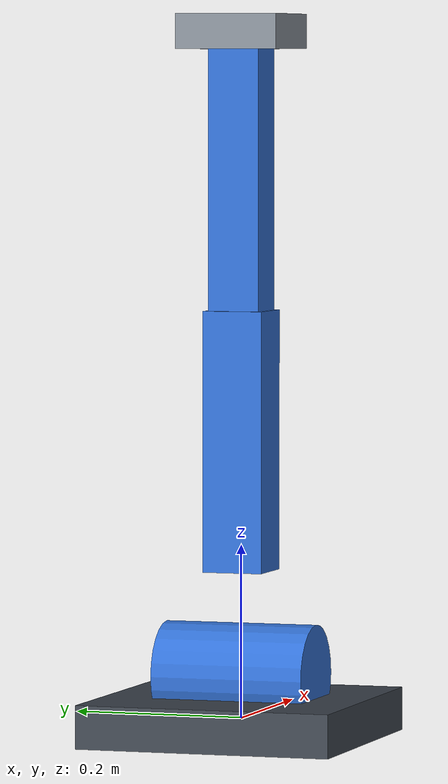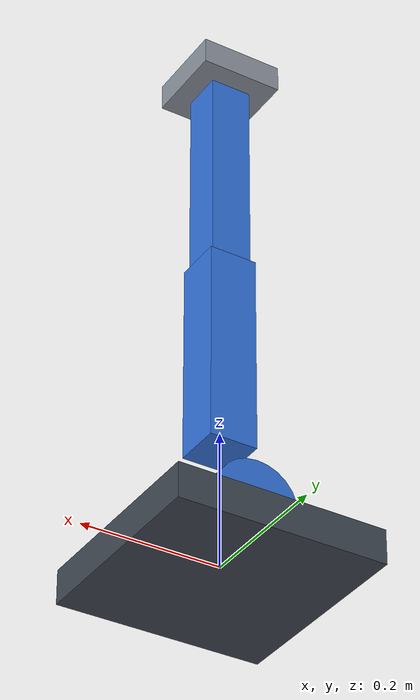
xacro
<?xml version="1.0"?>
<robot name="biped_leg" xmlns:xacro="http://www.ros.org/wiki/xacro">

  <!-- Materiales -->
  <material name="base_metal">
    <color rgba="0.25 0.28 0.32 1.0"/>
  </material>
  <material name="link_blue">
    <color rgba="0.20 0.45 0.85 1.0"/>
  </material>
  <material name="joint_orange">
    <color rgba="0.95 0.55 0.15 1.0"/>
  </material>
  <material name="foot_grey">
    <color rgba="0.55 0.58 0.62 1.0"/>
  </material>

  <!-- Eslabon raiz: base del robot, en el origen. Sin inercia (evita WARN de KDL). -->
  <link name="base_link">
    <visual>
      <geometry>
        <box size="0.30 0.30 0.05"/>
      </geometry>
      <material name="base_metal"/>
    </visual>
    <collision>
      <geometry>
        <box size="0.30 0.30 0.05"/>
      </geometry>
    </collision>
  </link>

  <!-- CADERA 1: junta en Y (gira la pata) -->
  <joint name="hip_1" type="revolute">
    <parent link="base_link"/>
    <child link="hip1"/>
    <origin xyz="0 0 0.05" rpy="0 0 0"/>
    <axis xyz="0 0 1"/>
    <limit lower="-1.5" upper="1.5" effort="10" velocity="2.0"/>
  </joint>
  <link name="hip1">
    <visual>
      <geometry>
        <cylinder radius="0.06" length="0.18"/>
      </geometry>
      <origin rpy="1.5707 0 0"/>
      <material name="link_blue"/>
    </visual>
    <collision>
      <geometry>
        <cylinder radius="0.06" length="0.18"/>
      </geometry>
    </collision>
    <inertial>
      <mass value="0.5"/>
      <inertia ixx="0.01" ixy="0" ixz="0" iyy="0.01" iyz="0" izz="0.01"/>
    </inertial>
  </link>

  <!-- MUSLO: junta en X (rodilla superior) -->
  <joint name="hip_2" type="revolute">
    <parent link="hip1"/>
    <child link="thigh"/>
    <origin xyz="0 0 0.12" rpy="0 0 0"/>
    <axis xyz="1 0 0"/>
    <limit lower="-1.5" upper="1.5" effort="10" velocity="2.0"/>
  </joint>
  <link name="thigh">
    <visual>
      <geometry>
        <box size="0.07 0.07 0.30"/>
      </geometry>
      <origin xyz="0 0 0.15"/>
      <material name="link_blue"/>
    </visual>
    <collision>
      <geometry>
        <box size="0.07 0.07 0.30"/>
      </geometry>
    </collision>
    <inertial>
      <mass value="0.4"/>
      <inertia ixx="0.01" ixy="0" ixz="0" iyy="0.01" iyz="0" izz="0.01"/>
    </inertial>
  </link>

  <!-- CANILLA: junta en X (rodilla) -->
  <joint name="knee" type="revolute">
    <parent link="thigh"/>
    <child link="shank"/>
    <origin xyz="0 0 0.30" rpy="0 0 0"/>
    <axis xyz="1 0 0"/>
    <limit lower="-2.0" upper="0.0" effort="10" velocity="2.0"/>
  </joint>
  <link name="shank">
    <visual>
      <geometry>
        <box size="0.06 0.06 0.30"/>
      </geometry>
      <origin xyz="0 0 0.15"/>
      <material name="link_blue"/>
    </visual>
    <collision>
      <geometry>
        <box size="0.06 0.06 0.30"/>
      </geometry>
    </collision>
    <inertial>
      <mass value="0.3"/>
      <inertia ixx="0.01" ixy="0" ixz="0" iyy="0.01" iyz="0" izz="0.01"/>
    </inertial>
  </link>

  <!-- PIE: eslabon fijo al final de la canilla -->
  <joint name="foot_fixed" type="fixed">
    <parent link="shank"/>
    <child link="foot"/>
    <origin xyz="0 0 0.30" rpy="0 0 0"/>
  </joint>
  <link name="foot">
    <visual>
      <geometry>
        <box size="0.12 0.12 0.04"/>
      </geometry>
      <origin xyz="0 0 0.02"/>
      <material name="foot_grey"/>
    </visual>
    <collision>
      <geometry>
        <box size="0.12 0.12 0.04"/>
      </geometry>
    </collision>
    <inertial>
      <mass value="0.2"/>
      <inertia ixx="0.005" ixy="0" ixz="0" iyy="0.005" iyz="0" izz="0.005"/>
    </inertial>
  </link>

</robot>
